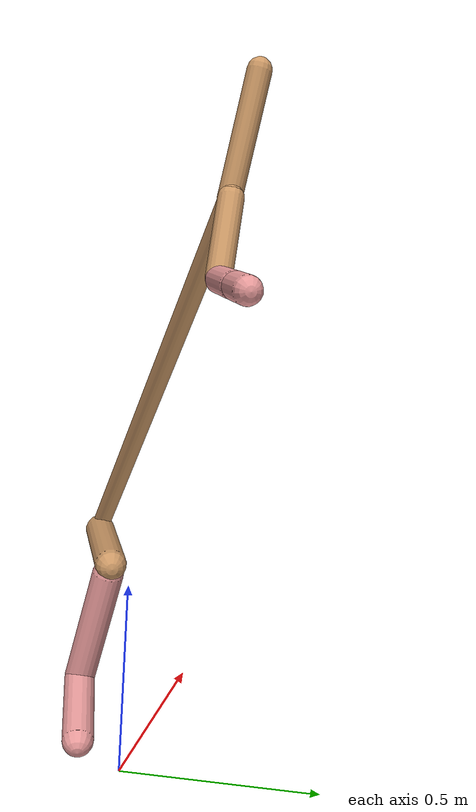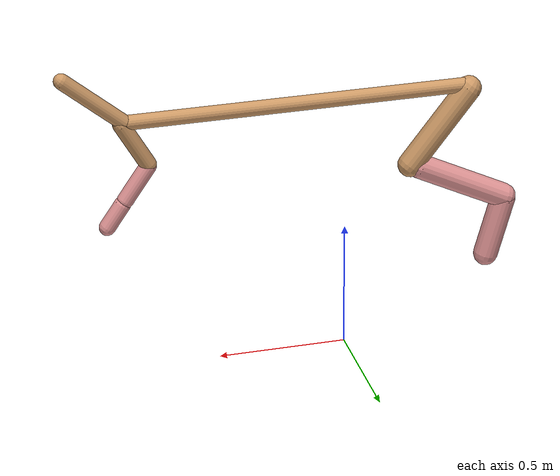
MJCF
<mujoco model="cheetah">
  <compiler angle="radian" coordinate="local" inertiafromgeom="true" settotalmass="14" />
  <default>
    <joint armature=".1" damping=".01" limited="true" solimplimit="0 .8 .03" solreflimit=".02 1" stiffness="8" />
    <geom conaffinity="0" condim="3" contype="1" friction="0.8 .1 .1" rgba="0.8 0.6 .4 1" solimp="0.0 0.8 0.01" solref="0.02 1" />
    <motor ctrllimited="true" ctrlrange="-1 1" />
  </default>
  <size nstack="300000" nuser_geom="1" />
  <option gravity="0 0 -9.81" timestep="0.01" />
  <worldbody>
    <body name="torso" pos="0.0 0.0 1.046836436783912">
      <joint armature="0" axis="1 0 0" damping="0" limited="false" name="ignorex" pos="0 0 0" stiffness="0" type="slide" />
      <joint armature="0" axis="0 0 1" damping="0" limited="false" name="ignorez" pos="0 0 0" stiffness="0" type="slide" />
      <joint armature="0" axis="0 1 0" damping="0" limited="false" name="ignorey" pos="0 0 0" stiffness="0" type="hinge" />
      <geom fromto="-0.5 0.0 0.0 0.8723595542470683 0.0 0.0" name="torso" size="0.028844025347781774" type="capsule" />
      <geom axisangle="0 1 0 .87" name="head" pos="0.9723595542470683 0.0 0.1" size="0.030266156468669595 0.15" type="capsule" />

      <body name="bthigh" pos="-.5 0 0">
        <joint axis="0 1 0" damping="6" name="bthigh" pos="0 0 0" range="-.52 1.05" stiffness="240" type="hinge" />
        <geom axisangle="0 1 0 -3.8" name="bthigh" pos="0.12598570900464212 0.0 -0.16378142170603477" size="0.04833971017313782 0.18761973163870102" type="capsule" />
        <body name="bshin" pos="0.21197141800928423 0.0 -0.31756284341206953">
          <joint axis="0 1 0" damping="4.5" name="bshin" pos="0 0 0" range="-.785 .785" stiffness="180" type="hinge" />
          <geom axisangle="0 1 0 -2.03" name="bshin" pos="-0.17943473812148997 0.0 -0.08971736906074498" rgba="0.9 0.6 0.6 1" size="0.04833971017313782 0.19408937755727693" type="capsule" />
          <body name="bfoot" pos="-0.35886947624297993 0.0 -0.17943473812148997">
            <joint axis="0 1 0" damping="3" name="bfoot" pos="0 0 0" range="-.4 .785" stiffness="120" type="hinge" />
            <geom axisangle="0 1 0 -.27" name="bfoot" pos="0.03816363440027716 0.0 -0.12339575122756283" rgba="0.9 0.6 0.6 1" size="0.04833971017313782 0.12162934326922688" type="capsule" />
            <inertial mass="10" />
          </body>
        </body>
      </body>
      <body name="fthigh" pos="0.8723595542470683 0.0 0.0">
        <joint axis="0 1 0" damping="4.5" name="fthigh" pos="0 0 0" range="-1.5 0.8" stiffness="180" type="hinge" />
        <geom axisangle="0 1 0 .52" name="fthigh" pos="-0.05411297088275428 0.0 -0.09276509294186447" size="0.0322 0.1014700482614151" type="capsule" />
        <body name="fshin" pos="-0.10822594176550857 0.0 -0.18553018588372894">
          <joint axis="0 1 0" damping="3" name="fshin" pos="0 0 0" range="-1.2 1.1" stiffness="120" type="hinge" />
          <geom axisangle="0 1 0 -.6" name="fshin" pos="0.050287129142498825 0.0 -0.06962833265884452" rgba="0.9 0.6 0.6 1" size="0.0322 0.08087086553165414" type="capsule" />
          <body name="ffoot" pos="0.10057425828499765 0.0 -0.13925666531768904">
            <joint axis="0 1 0" damping="1.5" name="ffoot" pos="0 0 0" range="-3.1 -0.3" stiffness="60" type="hinge" />
            <geom axisangle="0 1 0 -.6" name="ffoot" pos="0.03602628381242735 0.0 -0.05604088593044255" rgba="0.9 0.6 0.6 1" size="0.0322 0.05340528855863953" type="capsule" />
            <inertial mass="10" />
          </body>
        </body>
      </body>
    </body>
  </worldbody>
  <actuator>
    <motor gear="120" joint="bthigh" name="bthigh" />
    <motor gear="90" joint="bshin" name="bshin" />
    <motor gear="60" joint="bfoot" name="bfoot" />
    <motor gear="120" joint="fthigh" name="fthigh" />
    <motor gear="60" joint="fshin" name="fshin" />
    <motor gear="30" joint="ffoot" name="ffoot" />
  </actuator>
</mujoco>
